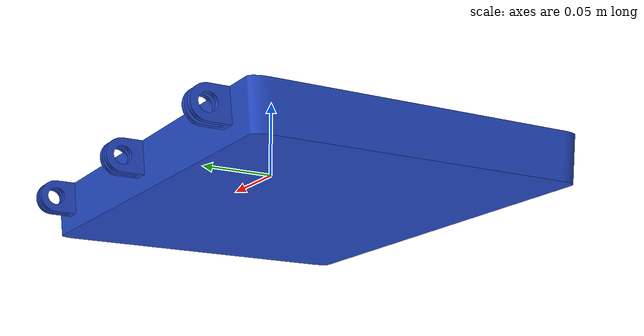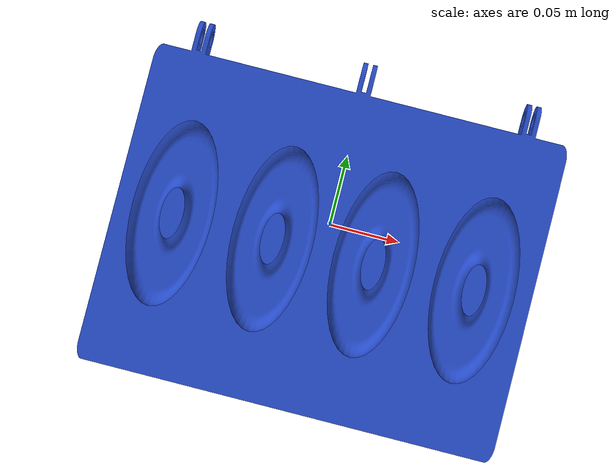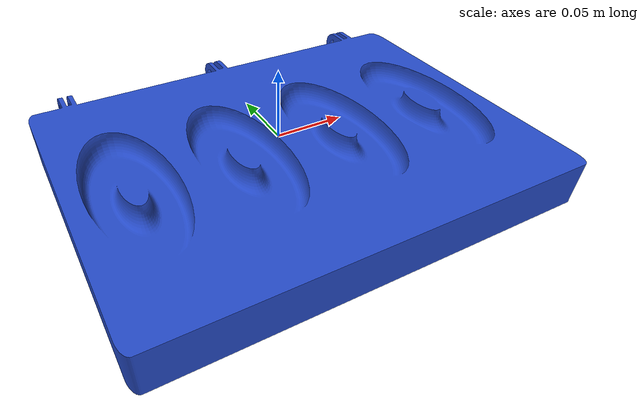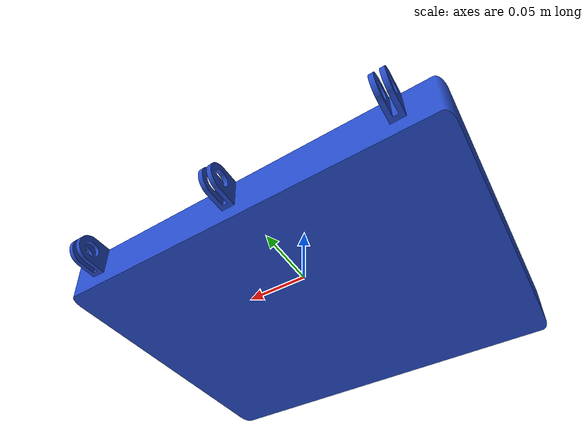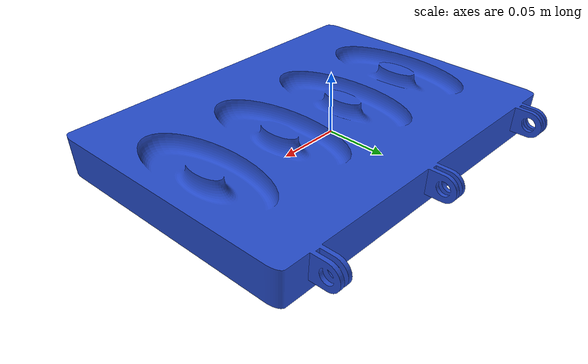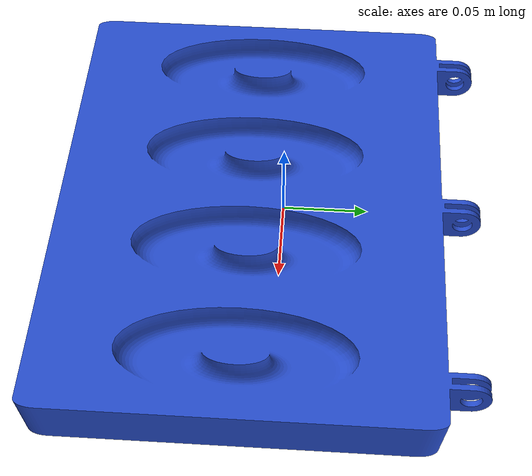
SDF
<?xml version="1.0" ?>

<sdf version="1.5">
  <model name="cast_mold2">
    <static>false</static>
    <link name="link0">
      <collision name="collision">
        <geometry>
          <mesh>
            <uri>model://cast_mold2/meshes/cast_mold2.dae</uri>
          </mesh>
        </geometry>
      </collision>
      <visual name="visual">
        <geometry>
          <mesh>
            <uri>model://cast_mold2/meshes/cast_mold2.dae</uri>
          </mesh>
        </geometry>
        <material>
		    <script>
		        <uri>file://media/materials/scripts/gazebo.material</uri>
		        <name>Gazebo/Blue</name>
		    </script>
        </material>
      </visual>
	  <inertial>
			<pose>0.0 0.0 0.016</pose>
		    <mass>0.1</mass>
		    <inertia>
		      <ixx>0.000539835</ixx>
		      <iyy>0.00075853</iyy>
		      <izz>0.0012813</izz>
		      <ixy>0.0</ixy>
		      <ixz>0.0</ixz>
		      <iyz>0.0</iyz>
		    </inertia>
	  </inertial>
	</link>
  </model>
</sdf>
